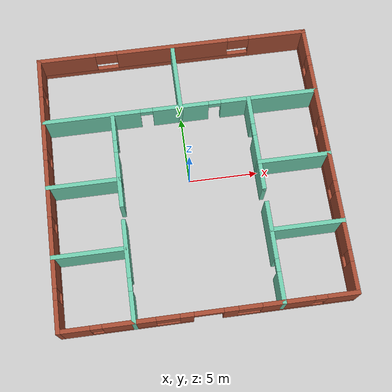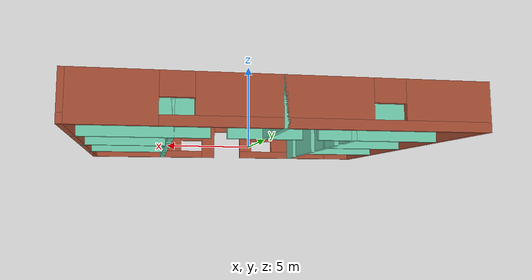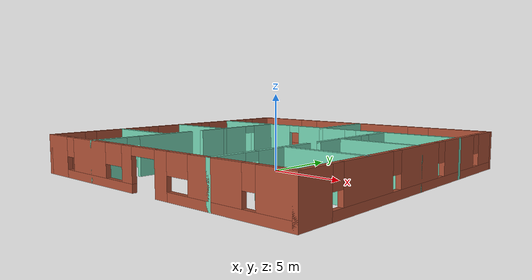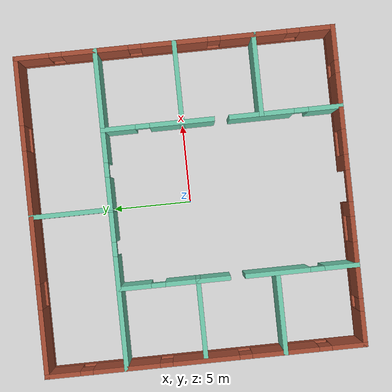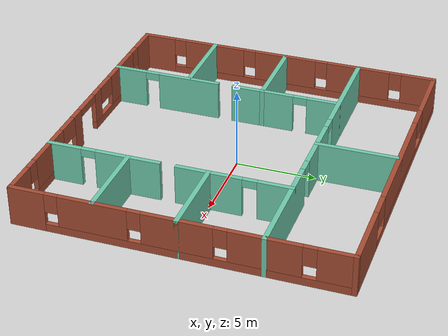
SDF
<?xml version='1.0'?>
<sdf version='1.6'>
  <model name='Building'>
    <pose frame=''>0 -0 0 0 -0 0</pose>
    <link name='Wall_0'>
      <pose frame=''>0 10 0 0 -0 3.14159</pose>
      <visual name='Wall_0_Visual_0'>
        <pose frame=''>-7.975 0 1.25 0 -0 0</pose>
        <geometry>
          <box>
            <size>4.35 0.3 2.5</size>
          </box>
        </geometry>
        <material>
          <script>
            <uri>file://media/materials/scripts/gazebo.material</uri>
            <name>Gazebo/Bricks</name>
          </script>
          <ambient>1 1 1 1</ambient>
        </material>
        <meta>
          <layer>0</layer>
        </meta>
      </visual>
      <collision name='Wall_0_Collision_0'>
        <geometry>
          <box>
            <size>4.35 0.3 2.5</size>
          </box>
        </geometry>
        <pose frame=''>-7.975 0 1.25 0 -0 0</pose>
      </collision>
      <visual name='Wall_0_Visual_1'>
        <pose frame=''>2.175 0 0.25 0 -0 0</pose>
        <geometry>
          <box>
            <size>15.95 0.3 0.5</size>
          </box>
        </geometry>
        <material>
          <script>
            <uri>file://media/materials/scripts/gazebo.material</uri>
            <name>Gazebo/Bricks</name>
          </script>
          <ambient>1 1 1 1</ambient>
        </material>
        <meta>
          <layer>0</layer>
        </meta>
      </visual>
      <collision name='Wall_0_Collision_1'>
        <geometry>
          <box>
            <size>15.95 0.3 0.5</size>
          </box>
        </geometry>
        <pose frame=''>2.175 0 0.25 0 -0 0</pose>
      </collision>
      <visual name='Wall_0_Visual_2'>
        <pose frame=''>0 0 1.5 0 -0 0</pose>
        <geometry>
          <box>
            <size>8.4 0.3 2</size>
          </box>
        </geometry>
        <material>
          <script>
            <uri>file://media/materials/scripts/gazebo.material</uri>
            <name>Gazebo/Bricks</name>
          </script>
          <ambient>1 1 1 1</ambient>
        </material>
        <meta>
          <layer>0</layer>
        </meta>
      </visual>
      <collision name='Wall_0_Collision_2'>
        <geometry>
          <box>
            <size>8.4 0.3 2</size>
          </box>
        </geometry>
        <pose frame=''>0 0 1.5 0 -0 0</pose>
      </collision>
      <visual name='Wall_0_Visual_3'>
        <pose frame=''>7.975 0 1.5 0 -0 0</pose>
        <geometry>
          <box>
            <size>4.35 0.3 2</size>
          </box>
        </geometry>
        <material>
          <script>
            <uri>file://media/materials/scripts/gazebo.material</uri>
            <name>Gazebo/Bricks</name>
          </script>
          <ambient>1 1 1 1</ambient>
        </material>
        <meta>
          <layer>0</layer>
        </meta>
      </visual>
      <collision name='Wall_0_Collision_3'>
        <geometry>
          <box>
            <size>4.35 0.3 2</size>
          </box>
        </geometry>
        <pose frame=''>7.975 0 1.5 0 -0 0</pose>
      </collision>
      <visual name='Wall_0_Visual_4'>
        <pose frame=''>-5 0 1.9 0 -0 0</pose>
        <geometry>
          <box>
            <size>1.6 0.3 1.2</size>
          </box>
        </geometry>
        <material>
          <script>
            <uri>file://media/materials/scripts/gazebo.material</uri>
            <name>Gazebo/Bricks</name>
          </script>
          <ambient>1 1 1 1</ambient>
        </material>
        <meta>
          <layer>0</layer>
        </meta>
      </visual>
      <collision name='Wall_0_Collision_4'>
        <geometry>
          <box>
            <size>1.6 0.3 1.2</size>
          </box>
        </geometry>
        <pose frame=''>-5 0 1.9 0 -0 0</pose>
      </collision>
      <visual name='Wall_0_Visual_5'>
        <pose frame=''>5 0 1.9 0 -0 0</pose>
        <geometry>
          <box>
            <size>1.6 0.3 1.2</size>
          </box>
        </geometry>
        <material>
          <script>
            <uri>file://media/materials/scripts/gazebo.material</uri>
            <name>Gazebo/Bricks</name>
          </script>
          <ambient>1 1 1 1</ambient>
        </material>
        <meta>
          <layer>0</layer>
        </meta>
      </visual>
      <collision name='Wall_0_Collision_5'>
        <geometry>
          <box>
            <size>1.6 0.3 1.2</size>
          </box>
        </geometry>
        <pose frame=''>5 0 1.9 0 -0 0</pose>
      </collision>
    </link>
    <link name='Wall_12'>
      <pose frame=''>-5 -2.5 0 0 -0 1.5708</pose>
      <visual name='Wall_12_Visual_0'>
        <pose frame=''>-6.55 0 1.25 0 -0 0</pose>
        <geometry>
          <box>
            <size>2.2 0.3 2.5</size>
          </box>
        </geometry>
        <material>
          <script>
            <uri>file://media/materials/scripts/gazebo.material</uri>
            <name>Gazebo/Grey</name>
          </script>
          <ambient>0.435294 0.796078 0.67451 1</ambient>
        </material>
        <meta>
          <layer>0</layer>
        </meta>
      </visual>
      <collision name='Wall_12_Collision_0'>
        <geometry>
          <box>
            <size>2.2 0.3 2.5</size>
          </box>
        </geometry>
        <pose frame=''>-6.55 0 1.25 0 -0 0</pose>
      </collision>
      <visual name='Wall_12_Visual_1'>
        <pose frame=''>-2.5 0 1.25 0 -0 0</pose>
        <geometry>
          <box>
            <size>4.1 0.3 2.5</size>
          </box>
        </geometry>
        <material>
          <script>
            <uri>file://media/materials/scripts/gazebo.material</uri>
            <name>Gazebo/Grey</name>
          </script>
          <ambient>0.435294 0.796078 0.67451 1</ambient>
        </material>
        <meta>
          <layer>0</layer>
        </meta>
      </visual>
      <collision name='Wall_12_Collision_1'>
        <geometry>
          <box>
            <size>4.1 0.3 2.5</size>
          </box>
        </geometry>
        <pose frame=''>-2.5 0 1.25 0 -0 0</pose>
      </collision>
      <visual name='Wall_12_Visual_2'>
        <pose frame=''>2.5 0 1.25 0 -0 0</pose>
        <geometry>
          <box>
            <size>4.1 0.3 2.5</size>
          </box>
        </geometry>
        <material>
          <script>
            <uri>file://media/materials/scripts/gazebo.material</uri>
            <name>Gazebo/Grey</name>
          </script>
          <ambient>0.435294 0.796078 0.67451 1</ambient>
        </material>
        <meta>
          <layer>0</layer>
        </meta>
      </visual>
      <collision name='Wall_12_Collision_2'>
        <geometry>
          <box>
            <size>4.1 0.3 2.5</size>
          </box>
        </geometry>
        <pose frame=''>2.5 0 1.25 0 -0 0</pose>
      </collision>
      <visual name='Wall_12_Visual_3'>
        <pose frame=''>6.55 0 1.25 0 -0 0</pose>
        <geometry>
          <box>
            <size>2.2 0.3 2.5</size>
          </box>
        </geometry>
        <material>
          <script>
            <uri>file://media/materials/scripts/gazebo.material</uri>
            <name>Gazebo/Grey</name>
          </script>
          <ambient>0.435294 0.796078 0.67451 1</ambient>
        </material>
        <meta>
          <layer>0</layer>
        </meta>
      </visual>
      <collision name='Wall_12_Collision_3'>
        <geometry>
          <box>
            <size>2.2 0.3 2.5</size>
          </box>
        </geometry>
        <pose frame=''>6.55 0 1.25 0 -0 0</pose>
      </collision>
      <visual name='Wall_12_Visual_4'>
        <pose frame=''>-5 0 2.25 0 -0 0</pose>
        <geometry>
          <box>
            <size>0.9 0.3 0.5</size>
          </box>
        </geometry>
        <material>
          <script>
            <uri>file://media/materials/scripts/gazebo.material</uri>
            <name>Gazebo/Grey</name>
          </script>
          <ambient>0.435294 0.796078 0.67451 1</ambient>
        </material>
        <meta>
          <layer>0</layer>
        </meta>
      </visual>
      <collision name='Wall_12_Collision_4'>
        <geometry>
          <box>
            <size>0.9 0.3 0.5</size>
          </box>
        </geometry>
        <pose frame=''>-5 0 2.25 0 -0 0</pose>
      </collision>
      <visual name='Wall_12_Visual_5'>
        <pose frame=''>-0.45 0 2.25 0 -0 0</pose>
        <geometry>
          <box>
            <size>0 0.3 0.5</size>
          </box>
        </geometry>
        <material>
          <script>
            <uri>file://media/materials/scripts/gazebo.material</uri>
            <name>Gazebo/Grey</name>
          </script>
          <ambient>0.435294 0.796078 0.67451 1</ambient>
        </material>
        <meta>
          <layer>0</layer>
        </meta>
      </visual>
      <collision name='Wall_12_Collision_5'>
        <geometry>
          <box>
            <size>0 0.3 0.5</size>
          </box>
        </geometry>
        <pose frame=''>-0.45 0 2.25 0 -0 0</pose>
      </collision>
      <visual name='Wall_12_Visual_6'>
        <pose frame=''>5 0 2.25 0 -0 0</pose>
        <geometry>
          <box>
            <size>0.9 0.3 0.5</size>
          </box>
        </geometry>
        <material>
          <script>
            <uri>file://media/materials/scripts/gazebo.material</uri>
            <name>Gazebo/Grey</name>
          </script>
          <ambient>0.435294 0.796078 0.67451 1</ambient>
        </material>
        <meta>
          <layer>0</layer>
        </meta>
      </visual>
      <collision name='Wall_12_Collision_6'>
        <geometry>
          <box>
            <size>0.9 0.3 0.5</size>
          </box>
        </geometry>
        <pose frame=''>5 0 2.25 0 -0 0</pose>
      </collision>
    </link>
    <link name='Wall_14'>
      <pose frame=''>5 -2.5 0 0 0 -1.5708</pose>
      <visual name='Wall_14_Visual_0'>
        <pose frame=''>-6.55 0 1.25 0 -0 0</pose>
        <geometry>
          <box>
            <size>2.2 0.3 2.5</size>
          </box>
        </geometry>
        <material>
          <script>
            <uri>file://media/materials/scripts/gazebo.material</uri>
            <name>Gazebo/Grey</name>
          </script>
          <ambient>0.435294 0.796078 0.67451 1</ambient>
        </material>
        <meta>
          <layer>0</layer>
        </meta>
      </visual>
      <collision name='Wall_14_Collision_0'>
        <geometry>
          <box>
            <size>2.2 0.3 2.5</size>
          </box>
        </geometry>
        <pose frame=''>-6.55 0 1.25 0 -0 0</pose>
      </collision>
      <visual name='Wall_14_Visual_1'>
        <pose frame=''>-2.5 0 1.25 0 -0 0</pose>
        <geometry>
          <box>
            <size>4.1 0.3 2.5</size>
          </box>
        </geometry>
        <material>
          <script>
            <uri>file://media/materials/scripts/gazebo.material</uri>
            <name>Gazebo/Grey</name>
          </script>
          <ambient>0.435294 0.796078 0.67451 1</ambient>
        </material>
        <meta>
          <layer>0</layer>
        </meta>
      </visual>
      <collision name='Wall_14_Collision_1'>
        <geometry>
          <box>
            <size>4.1 0.3 2.5</size>
          </box>
        </geometry>
        <pose frame=''>-2.5 0 1.25 0 -0 0</pose>
      </collision>
      <visual name='Wall_14_Visual_2'>
        <pose frame=''>2.5 0 1.25 0 -0 0</pose>
        <geometry>
          <box>
            <size>4.1 0.3 2.5</size>
          </box>
        </geometry>
        <material>
          <script>
            <uri>file://media/materials/scripts/gazebo.material</uri>
            <name>Gazebo/Grey</name>
          </script>
          <ambient>0.435294 0.796078 0.67451 1</ambient>
        </material>
        <meta>
          <layer>0</layer>
        </meta>
      </visual>
      <collision name='Wall_14_Collision_2'>
        <geometry>
          <box>
            <size>4.1 0.3 2.5</size>
          </box>
        </geometry>
        <pose frame=''>2.5 0 1.25 0 -0 0</pose>
      </collision>
      <visual name='Wall_14_Visual_3'>
        <pose frame=''>6.55 0 1.25 0 -0 0</pose>
        <geometry>
          <box>
            <size>2.2 0.3 2.5</size>
          </box>
        </geometry>
        <material>
          <script>
            <uri>file://media/materials/scripts/gazebo.material</uri>
            <name>Gazebo/Grey</name>
          </script>
          <ambient>0.435294 0.796078 0.67451 1</ambient>
        </material>
        <meta>
          <layer>0</layer>
        </meta>
      </visual>
      <collision name='Wall_14_Collision_3'>
        <geometry>
          <box>
            <size>2.2 0.3 2.5</size>
          </box>
        </geometry>
        <pose frame=''>6.55 0 1.25 0 -0 0</pose>
      </collision>
      <visual name='Wall_14_Visual_4'>
        <pose frame=''>-5 0 2.25 0 -0 0</pose>
        <geometry>
          <box>
            <size>0.9 0.3 0.5</size>
          </box>
        </geometry>
        <material>
          <script>
            <uri>file://media/materials/scripts/gazebo.material</uri>
            <name>Gazebo/Grey</name>
          </script>
          <ambient>0.435294 0.796078 0.67451 1</ambient>
        </material>
        <meta>
          <layer>0</layer>
        </meta>
      </visual>
      <collision name='Wall_14_Collision_4'>
        <geometry>
          <box>
            <size>0.9 0.3 0.5</size>
          </box>
        </geometry>
        <pose frame=''>-5 0 2.25 0 -0 0</pose>
      </collision>
      <visual name='Wall_14_Visual_5'>
        <pose frame=''>-0.45 0 2.25 0 -0 0</pose>
        <geometry>
          <box>
            <size>0 0.3 0.5</size>
          </box>
        </geometry>
        <material>
          <script>
            <uri>file://media/materials/scripts/gazebo.material</uri>
            <name>Gazebo/Grey</name>
          </script>
          <ambient>0.435294 0.796078 0.67451 1</ambient>
        </material>
        <meta>
          <layer>0</layer>
        </meta>
      </visual>
      <collision name='Wall_14_Collision_5'>
        <geometry>
          <box>
            <size>0 0.3 0.5</size>
          </box>
        </geometry>
        <pose frame=''>-0.45 0 2.25 0 -0 0</pose>
      </collision>
      <visual name='Wall_14_Visual_6'>
        <pose frame=''>5 0 2.25 0 -0 0</pose>
        <geometry>
          <box>
            <size>0.9 0.3 0.5</size>
          </box>
        </geometry>
        <material>
          <script>
            <uri>file://media/materials/scripts/gazebo.material</uri>
            <name>Gazebo/Grey</name>
          </script>
          <ambient>0.435294 0.796078 0.67451 1</ambient>
        </material>
        <meta>
          <layer>0</layer>
        </meta>
      </visual>
      <collision name='Wall_14_Collision_6'>
        <geometry>
          <box>
            <size>0.9 0.3 0.5</size>
          </box>
        </geometry>
        <pose frame=''>5 0 2.25 0 -0 0</pose>
      </collision>
    </link>
    <link name='Wall_16'>
      <collision name='Wall_16_Collision'>
        <geometry>
          <box>
            <size>5.3 0.3 2.5</size>
          </box>
        </geometry>
        <pose frame=''>0 0 1.25 0 -0 0</pose>
      </collision>
      <visual name='Wall_16_Visual'>
        <pose frame=''>0 0 1.25 0 -0 0</pose>
        <geometry>
          <box>
            <size>5.3 0.3 2.5</size>
          </box>
        </geometry>
        <material>
          <script>
            <uri>file://media/materials/scripts/gazebo.material</uri>
            <name>Gazebo/Grey</name>
          </script>
          <ambient>0.435294 0.796078 0.67451 1</ambient>
        </material>
        <meta>
          <layer>0</layer>
        </meta>
      </visual>
      <pose frame=''>0 7.5 0 0 -0 1.5708</pose>
    </link>
    <link name='Wall_19'>
      <collision name='Wall_19_Collision'>
        <geometry>
          <box>
            <size>5.3 0.3 2.5</size>
          </box>
        </geometry>
        <pose frame=''>0 0 1.25 0 -0 0</pose>
      </collision>
      <visual name='Wall_19_Visual'>
        <pose frame=''>0 0 1.25 0 -0 0</pose>
        <geometry>
          <box>
            <size>5.3 0.3 2.5</size>
          </box>
        </geometry>
        <material>
          <script>
            <uri>file://media/materials/scripts/gazebo.material</uri>
            <name>Gazebo/Grey</name>
          </script>
          <ambient>0.435294 0.796078 0.67451 1</ambient>
        </material>
        <meta>
          <layer>0</layer>
        </meta>
      </visual>
      <pose frame=''>-7.5 -5 0 0 -0 0</pose>
    </link>
    <link name='Wall_2'>
      <pose frame=''>0 -10 0 0 -0 0</pose>
      <visual name='Wall_2_Visual_0'>
        <pose frame=''>-9.025 0 1.25 0 -0 0</pose>
        <geometry>
          <box>
            <size>2.25 0.3 2.5</size>
          </box>
        </geometry>
        <material>
          <script>
            <uri>file://media/materials/scripts/gazebo.material</uri>
            <name>Gazebo/Bricks</name>
          </script>
          <ambient>1 1 1 1</ambient>
        </material>
        <meta>
          <layer>0</layer>
        </meta>
      </visual>
      <collision name='Wall_2_Collision_0'>
        <geometry>
          <box>
            <size>2.25 0.3 2.5</size>
          </box>
        </geometry>
        <pose frame=''>-9.025 0 1.25 0 -0 0</pose>
      </collision>
      <visual name='Wall_2_Visual_1'>
        <pose frame=''>1.46321 0 1.25 0 -0 0</pose>
        <geometry>
          <box>
            <size>0.973589 0.3 2.5</size>
          </box>
        </geometry>
        <material>
          <script>
            <uri>file://media/materials/scripts/gazebo.material</uri>
            <name>Gazebo/Bricks</name>
          </script>
          <ambient>1 1 1 1</ambient>
        </material>
        <meta>
          <layer>0</layer>
        </meta>
      </visual>
      <collision name='Wall_2_Collision_1'>
        <geometry>
          <box>
            <size>0.973589 0.3 2.5</size>
          </box>
        </geometry>
        <pose frame=''>1.46321 0 1.25 0 -0 0</pose>
      </collision>
      <visual name='Wall_2_Visual_2'>
        <pose frame=''>-4.4618 0 0.25 0 -0 0</pose>
        <geometry>
          <box>
            <size>6.87641 0.3 0.5</size>
          </box>
        </geometry>
        <material>
          <script>
            <uri>file://media/materials/scripts/gazebo.material</uri>
            <name>Gazebo/Bricks</name>
          </script>
          <ambient>1 1 1 1</ambient>
        </material>
        <meta>
          <layer>0</layer>
        </meta>
      </visual>
      <collision name='Wall_2_Collision_2'>
        <geometry>
          <box>
            <size>6.87641 0.3 0.5</size>
          </box>
        </geometry>
        <pose frame=''>-4.4618 0 0.25 0 -0 0</pose>
      </collision>
      <visual name='Wall_2_Visual_3'>
        <pose frame=''>6.05 0 0.25 0 -0 0</pose>
        <geometry>
          <box>
            <size>8.2 0.3 0.5</size>
          </box>
        </geometry>
        <material>
          <script>
            <uri>file://media/materials/scripts/gazebo.material</uri>
            <name>Gazebo/Bricks</name>
          </script>
          <ambient>1 1 1 1</ambient>
        </material>
        <meta>
          <layer>0</layer>
        </meta>
      </visual>
      <collision name='Wall_2_Collision_3'>
        <geometry>
          <box>
            <size>8.2 0.3 0.5</size>
          </box>
        </geometry>
        <pose frame=''>6.05 0 0.25 0 -0 0</pose>
      </collision>
      <visual name='Wall_2_Visual_4'>
        <pose frame=''>-5.325 0 1.5 0 -0 0</pose>
        <geometry>
          <box>
            <size>3.55 0.3 2</size>
          </box>
        </geometry>
        <material>
          <script>
            <uri>file://media/materials/scripts/gazebo.material</uri>
            <name>Gazebo/Bricks</name>
          </script>
          <ambient>1 1 1 1</ambient>
        </material>
        <meta>
          <layer>0</layer>
        </meta>
      </visual>
      <collision name='Wall_2_Collision_4'>
        <geometry>
          <box>
            <size>3.55 0.3 2</size>
          </box>
        </geometry>
        <pose frame=''>-5.325 0 1.5 0 -0 0</pose>
      </collision>
      <visual name='Wall_2_Visual_5'>
        <pose frame=''>-1.4868 0 1.5 0 -0 0</pose>
        <geometry>
          <box>
            <size>0.926411 0.3 2</size>
          </box>
        </geometry>
        <material>
          <script>
            <uri>file://media/materials/scripts/gazebo.material</uri>
            <name>Gazebo/Bricks</name>
          </script>
          <ambient>1 1 1 1</ambient>
        </material>
        <meta>
          <layer>0</layer>
        </meta>
      </visual>
      <collision name='Wall_2_Collision_5'>
        <geometry>
          <box>
            <size>0.926411 0.3 2</size>
          </box>
        </geometry>
        <pose frame=''>-1.4868 0 1.5 0 -0 0</pose>
      </collision>
      <visual name='Wall_2_Visual_6'>
        <pose frame=''>-1.4868 0 1.5 0 -0 0</pose>
        <geometry>
          <box>
            <size>0.926411 0.3 2</size>
          </box>
        </geometry>
        <material>
          <script>
            <uri>file://media/materials/scripts/gazebo.material</uri>
            <name>Gazebo/Bricks</name>
          </script>
          <ambient>1 1 1 1</ambient>
        </material>
        <meta>
          <layer>0</layer>
        </meta>
      </visual>
      <collision name='Wall_2_Collision_6'>
        <geometry>
          <box>
            <size>0.926411 0.3 2</size>
          </box>
        </geometry>
        <pose frame=''>-1.4868 0 1.5 0 -0 0</pose>
      </collision>
      <visual name='Wall_2_Visual_7'>
        <pose frame=''>5.325 0 1.5 0 -0 0</pose>
        <geometry>
          <box>
            <size>3.55 0.3 2</size>
          </box>
        </geometry>
        <material>
          <script>
            <uri>file://media/materials/scripts/gazebo.material</uri>
            <name>Gazebo/Bricks</name>
          </script>
          <ambient>1 1 1 1</ambient>
        </material>
        <meta>
          <layer>0</layer>
        </meta>
      </visual>
      <collision name='Wall_2_Collision_7'>
        <geometry>
          <box>
            <size>3.55 0.3 2</size>
          </box>
        </geometry>
        <pose frame=''>5.325 0 1.5 0 -0 0</pose>
      </collision>
      <visual name='Wall_2_Visual_8'>
        <pose frame=''>9.025 0 1.5 0 -0 0</pose>
        <geometry>
          <box>
            <size>2.25 0.3 2</size>
          </box>
        </geometry>
        <material>
          <script>
            <uri>file://media/materials/scripts/gazebo.material</uri>
            <name>Gazebo/Bricks</name>
          </script>
          <ambient>1 1 1 1</ambient>
        </material>
        <meta>
          <layer>0</layer>
        </meta>
      </visual>
      <collision name='Wall_2_Collision_8'>
        <geometry>
          <box>
            <size>2.25 0.3 2</size>
          </box>
        </geometry>
        <pose frame=''>9.025 0 1.5 0 -0 0</pose>
      </collision>
      <visual name='Wall_2_Visual_9'>
        <pose frame=''>-7.5 0 1.9 0 -0 0</pose>
        <geometry>
          <box>
            <size>0.8 0.3 1.2</size>
          </box>
        </geometry>
        <material>
          <script>
            <uri>file://media/materials/scripts/gazebo.material</uri>
            <name>Gazebo/Bricks</name>
          </script>
          <ambient>1 1 1 1</ambient>
        </material>
        <meta>
          <layer>0</layer>
        </meta>
      </visual>
      <collision name='Wall_2_Collision_9'>
        <geometry>
          <box>
            <size>0.8 0.3 1.2</size>
          </box>
        </geometry>
        <pose frame=''>-7.5 0 1.9 0 -0 0</pose>
      </collision>
      <visual name='Wall_2_Visual_10'>
        <pose frame=''>2.75 0 1.9 0 -0 0</pose>
        <geometry>
          <box>
            <size>1.6 0.3 1.2</size>
          </box>
        </geometry>
        <material>
          <script>
            <uri>file://media/materials/scripts/gazebo.material</uri>
            <name>Gazebo/Bricks</name>
          </script>
          <ambient>1 1 1 1</ambient>
        </material>
        <meta>
          <layer>0</layer>
        </meta>
      </visual>
      <collision name='Wall_2_Collision_10'>
        <geometry>
          <box>
            <size>1.6 0.3 1.2</size>
          </box>
        </geometry>
        <pose frame=''>2.75 0 1.9 0 -0 0</pose>
      </collision>
      <visual name='Wall_2_Visual_11'>
        <pose frame=''>-2.75 0 1.9 0 -0 0</pose>
        <geometry>
          <box>
            <size>1.6 0.3 1.2</size>
          </box>
        </geometry>
        <material>
          <script>
            <uri>file://media/materials/scripts/gazebo.material</uri>
            <name>Gazebo/Bricks</name>
          </script>
          <ambient>1 1 1 1</ambient>
        </material>
        <meta>
          <layer>0</layer>
        </meta>
      </visual>
      <collision name='Wall_2_Collision_11'>
        <geometry>
          <box>
            <size>1.6 0.3 1.2</size>
          </box>
        </geometry>
        <pose frame=''>-2.75 0 1.9 0 -0 0</pose>
      </collision>
      <visual name='Wall_2_Visual_12'>
        <pose frame=''>7.5 0 1.9 0 -0 0</pose>
        <geometry>
          <box>
            <size>0.8 0.3 1.2</size>
          </box>
        </geometry>
        <material>
          <script>
            <uri>file://media/materials/scripts/gazebo.material</uri>
            <name>Gazebo/Bricks</name>
          </script>
          <ambient>1 1 1 1</ambient>
        </material>
        <meta>
          <layer>0</layer>
        </meta>
      </visual>
      <collision name='Wall_2_Collision_12'>
        <geometry>
          <box>
            <size>0.8 0.3 1.2</size>
          </box>
        </geometry>
        <pose frame=''>7.5 0 1.9 0 -0 0</pose>
      </collision>
      <visual name='Wall_2_Visual_13'>
        <pose frame=''>-0.023589 0 2.25 0 -0 0</pose>
        <geometry>
          <box>
            <size>2 0.3 0.5</size>
          </box>
        </geometry>
        <material>
          <script>
            <uri>file://media/materials/scripts/gazebo.material</uri>
            <name>Gazebo/Bricks</name>
          </script>
          <ambient>1 1 1 1</ambient>
        </material>
        <meta>
          <layer>0</layer>
        </meta>
      </visual>
      <collision name='Wall_2_Collision_13'>
        <geometry>
          <box>
            <size>2 0.3 0.5</size>
          </box>
        </geometry>
        <pose frame=''>-0.023589 0 2.25 0 -0 0</pose>
      </collision>
      <visual name='Wall_2_Visual_14'>
        <pose frame=''>-0.023589 0 2.25 0 -0 0</pose>
        <geometry>
          <box>
            <size>2 0.3 0.5</size>
          </box>
        </geometry>
        <material>
          <script>
            <uri>file://media/materials/scripts/gazebo.material</uri>
            <name>Gazebo/Bricks</name>
          </script>
          <ambient>1 1 1 1</ambient>
        </material>
        <meta>
          <layer>0</layer>
        </meta>
      </visual>
      <collision name='Wall_2_Collision_14'>
        <geometry>
          <box>
            <size>2 0.3 0.5</size>
          </box>
        </geometry>
        <pose frame=''>-0.023589 0 2.25 0 -0 0</pose>
      </collision>
    </link>
    <link name='Wall_21'>
      <collision name='Wall_21_Collision'>
        <geometry>
          <box>
            <size>5.3 0.3 2.5</size>
          </box>
        </geometry>
        <pose frame=''>0 0 1.25 0 -0 0</pose>
      </collision>
      <visual name='Wall_21_Visual'>
        <pose frame=''>0 0 1.25 0 -0 0</pose>
        <geometry>
          <box>
            <size>5.3 0.3 2.5</size>
          </box>
        </geometry>
        <material>
          <script>
            <uri>file://media/materials/scripts/gazebo.material</uri>
            <name>Gazebo/Grey</name>
          </script>
          <ambient>0.435294 0.796078 0.67451 1</ambient>
        </material>
        <meta>
          <layer>0</layer>
        </meta>
      </visual>
      <pose frame=''>7.5 -5 0 0 -0 0</pose>
    </link>
    <link name='Wall_22'>
      <collision name='Wall_22_Collision'>
        <geometry>
          <box>
            <size>0.268816 0.15 2.5</size>
          </box>
        </geometry>
        <pose frame=''>0 0 1.25 0 -0 0</pose>
      </collision>
      <visual name='Wall_22_Visual'>
        <pose frame=''>0 0 1.25 0 -0 0</pose>
        <geometry>
          <box>
            <size>0.268816 0.15 2.5</size>
          </box>
        </geometry>
        <material>
          <script>
            <uri>file://media/materials/scripts/gazebo.material</uri>
            <name>Gazebo/Grey</name>
          </script>
          <ambient>1 1 1 1</ambient>
        </material>
        <meta>
          <layer>0</layer>
        </meta>
      </visual>
      <pose frame=''>9.95756 -4.95843 0 0 -0 2.36663</pose>
    </link>
    <link name='Wall_23'>
      <collision name='Wall_23_Collision'>
        <geometry>
          <box>
            <size>0.268816 0.15 2.5</size>
          </box>
        </geometry>
        <pose frame=''>0 0 1.25 0 -0 0</pose>
      </collision>
      <visual name='Wall_23_Visual'>
        <pose frame=''>0 0 1.25 0 -0 0</pose>
        <geometry>
          <box>
            <size>0.268816 0.15 2.5</size>
          </box>
        </geometry>
        <material>
          <script>
            <uri>file://media/materials/scripts/gazebo.material</uri>
            <name>Gazebo/Grey</name>
          </script>
          <ambient>1 1 1 1</ambient>
        </material>
        <meta>
          <layer>0</layer>
        </meta>
      </visual>
      <pose frame=''>9.95756 -4.95843 0 0 0 -0.77496</pose>
    </link>
    <link name='Wall_25'>
      <collision name='Wall_25_Collision'>
        <geometry>
          <box>
            <size>5.3 0.3 2.5</size>
          </box>
        </geometry>
        <pose frame=''>0 0 1.25 0 -0 0</pose>
      </collision>
      <visual name='Wall_25_Visual'>
        <pose frame=''>0 0 1.25 0 -0 0</pose>
        <geometry>
          <box>
            <size>5.3 0.3 2.5</size>
          </box>
        </geometry>
        <material>
          <script>
            <uri>file://media/materials/scripts/gazebo.material</uri>
            <name>Gazebo/Grey</name>
          </script>
          <ambient>0.435294 0.796078 0.67451 1</ambient>
        </material>
        <meta>
          <layer>0</layer>
        </meta>
      </visual>
      <pose frame=''>-7.5 0 0 0 -0 0</pose>
    </link>
    <link name='Wall_27'>
      <collision name='Wall_27_Collision'>
        <geometry>
          <box>
            <size>5.3 0.3 2.5</size>
          </box>
        </geometry>
        <pose frame=''>0 0 1.25 0 -0 0</pose>
      </collision>
      <visual name='Wall_27_Visual'>
        <pose frame=''>0 0 1.25 0 -0 0</pose>
        <geometry>
          <box>
            <size>5.3 0.3 2.5</size>
          </box>
        </geometry>
        <material>
          <script>
            <uri>file://media/materials/scripts/gazebo.material</uri>
            <name>Gazebo/Grey</name>
          </script>
          <ambient>0.435294 0.796078 0.67451 1</ambient>
        </material>
        <meta>
          <layer>0</layer>
        </meta>
      </visual>
      <pose frame=''>7.5 0 0 0 -0 0</pose>
    </link>
    <link name='Wall_5'>
      <pose frame=''>-10 0 0 0 -0 1.5708</pose>
      <visual name='Wall_5_Visual_0'>
        <pose frame=''>-9.025 0 1.25 0 -0 0</pose>
        <geometry>
          <box>
            <size>2.25 0.3 2.5</size>
          </box>
        </geometry>
        <material>
          <script>
            <uri>file://media/materials/scripts/gazebo.material</uri>
            <name>Gazebo/Bricks</name>
          </script>
          <ambient>1 1 1 1</ambient>
        </material>
        <meta>
          <layer>0</layer>
        </meta>
      </visual>
      <collision name='Wall_5_Collision_0'>
        <geometry>
          <box>
            <size>2.25 0.3 2.5</size>
          </box>
        </geometry>
        <pose frame=''>-9.025 0 1.25 0 -0 0</pose>
      </collision>
      <visual name='Wall_5_Visual_1'>
        <pose frame=''>1.125 0 0.25 0 -0 0</pose>
        <geometry>
          <box>
            <size>18.05 0.3 0.5</size>
          </box>
        </geometry>
        <material>
          <script>
            <uri>file://media/materials/scripts/gazebo.material</uri>
            <name>Gazebo/Bricks</name>
          </script>
          <ambient>1 1 1 1</ambient>
        </material>
        <meta>
          <layer>0</layer>
        </meta>
      </visual>
      <collision name='Wall_5_Collision_1'>
        <geometry>
          <box>
            <size>18.05 0.3 0.5</size>
          </box>
        </geometry>
        <pose frame=''>1.125 0 0.25 0 -0 0</pose>
      </collision>
      <visual name='Wall_5_Visual_2'>
        <pose frame=''>-5 0 1.5 0 -0 0</pose>
        <geometry>
          <box>
            <size>4.2 0.3 2</size>
          </box>
        </geometry>
        <material>
          <script>
            <uri>file://media/materials/scripts/gazebo.material</uri>
            <name>Gazebo/Bricks</name>
          </script>
          <ambient>1 1 1 1</ambient>
        </material>
        <meta>
          <layer>0</layer>
        </meta>
      </visual>
      <collision name='Wall_5_Collision_2'>
        <geometry>
          <box>
            <size>4.2 0.3 2</size>
          </box>
        </geometry>
        <pose frame=''>-5 0 1.5 0 -0 0</pose>
      </collision>
      <visual name='Wall_5_Visual_3'>
        <pose frame=''>-0.002642 0 1.5 0 -0 0</pose>
        <geometry>
          <box>
            <size>4.19472 0.3 2</size>
          </box>
        </geometry>
        <material>
          <script>
            <uri>file://media/materials/scripts/gazebo.material</uri>
            <name>Gazebo/Bricks</name>
          </script>
          <ambient>1 1 1 1</ambient>
        </material>
        <meta>
          <layer>0</layer>
        </meta>
      </visual>
      <collision name='Wall_5_Collision_3'>
        <geometry>
          <box>
            <size>4.19472 0.3 2</size>
          </box>
        </geometry>
        <pose frame=''>-0.002642 0 1.5 0 -0 0</pose>
      </collision>
      <visual name='Wall_5_Visual_4'>
        <pose frame=''>4.99736 0 1.5 0 -0 0</pose>
        <geometry>
          <box>
            <size>4.20528 0.3 2</size>
          </box>
        </geometry>
        <material>
          <script>
            <uri>file://media/materials/scripts/gazebo.material</uri>
            <name>Gazebo/Bricks</name>
          </script>
          <ambient>1 1 1 1</ambient>
        </material>
        <meta>
          <layer>0</layer>
        </meta>
      </visual>
      <collision name='Wall_5_Collision_4'>
        <geometry>
          <box>
            <size>4.20528 0.3 2</size>
          </box>
        </geometry>
        <pose frame=''>4.99736 0 1.5 0 -0 0</pose>
      </collision>
      <visual name='Wall_5_Visual_5'>
        <pose frame=''>9.025 0 1.5 0 -0 0</pose>
        <geometry>
          <box>
            <size>2.25 0.3 2</size>
          </box>
        </geometry>
        <material>
          <script>
            <uri>file://media/materials/scripts/gazebo.material</uri>
            <name>Gazebo/Bricks</name>
          </script>
          <ambient>1 1 1 1</ambient>
        </material>
        <meta>
          <layer>0</layer>
        </meta>
      </visual>
      <collision name='Wall_5_Collision_5'>
        <geometry>
          <box>
            <size>2.25 0.3 2</size>
          </box>
        </geometry>
        <pose frame=''>9.025 0 1.5 0 -0 0</pose>
      </collision>
      <visual name='Wall_5_Visual_6'>
        <pose frame=''>-7.5 0 1.9 0 -0 0</pose>
        <geometry>
          <box>
            <size>0.8 0.3 1.2</size>
          </box>
        </geometry>
        <material>
          <script>
            <uri>file://media/materials/scripts/gazebo.material</uri>
            <name>Gazebo/Bricks</name>
          </script>
          <ambient>1 1 1 1</ambient>
        </material>
        <meta>
          <layer>0</layer>
        </meta>
      </visual>
      <collision name='Wall_5_Collision_6'>
        <geometry>
          <box>
            <size>0.8 0.3 1.2</size>
          </box>
        </geometry>
        <pose frame=''>-7.5 0 1.9 0 -0 0</pose>
      </collision>
      <visual name='Wall_5_Visual_7'>
        <pose frame=''>-2.5 0 1.9 0 -0 0</pose>
        <geometry>
          <box>
            <size>0.8 0.3 1.2</size>
          </box>
        </geometry>
        <material>
          <script>
            <uri>file://media/materials/scripts/gazebo.material</uri>
            <name>Gazebo/Bricks</name>
          </script>
          <ambient>1 1 1 1</ambient>
        </material>
        <meta>
          <layer>0</layer>
        </meta>
      </visual>
      <collision name='Wall_5_Collision_7'>
        <geometry>
          <box>
            <size>0.8 0.3 1.2</size>
          </box>
        </geometry>
        <pose frame=''>-2.5 0 1.9 0 -0 0</pose>
      </collision>
      <visual name='Wall_5_Visual_8'>
        <pose frame=''>2.49471 0 1.9 0 -0 0</pose>
        <geometry>
          <box>
            <size>0.8 0.3 1.2</size>
          </box>
        </geometry>
        <material>
          <script>
            <uri>file://media/materials/scripts/gazebo.material</uri>
            <name>Gazebo/Bricks</name>
          </script>
          <ambient>1 1 1 1</ambient>
        </material>
        <meta>
          <layer>0</layer>
        </meta>
      </visual>
      <collision name='Wall_5_Collision_8'>
        <geometry>
          <box>
            <size>0.8 0.3 1.2</size>
          </box>
        </geometry>
        <pose frame=''>2.49471 0 1.9 0 -0 0</pose>
      </collision>
      <visual name='Wall_5_Visual_9'>
        <pose frame=''>7.5 0 1.9 0 -0 0</pose>
        <geometry>
          <box>
            <size>0.8 0.3 1.2</size>
          </box>
        </geometry>
        <material>
          <script>
            <uri>file://media/materials/scripts/gazebo.material</uri>
            <name>Gazebo/Bricks</name>
          </script>
          <ambient>1 1 1 1</ambient>
        </material>
        <meta>
          <layer>0</layer>
        </meta>
      </visual>
      <collision name='Wall_5_Collision_9'>
        <geometry>
          <box>
            <size>0.8 0.3 1.2</size>
          </box>
        </geometry>
        <pose frame=''>7.5 0 1.9 0 -0 0</pose>
      </collision>
    </link>
    <link name='Wall_7'>
      <pose frame=''>10 0 0 0 -0 1.5708</pose>
      <visual name='Wall_7_Visual_0'>
        <pose frame=''>-9.025 0 1.25 0 -0 0</pose>
        <geometry>
          <box>
            <size>2.25 0.3 2.5</size>
          </box>
        </geometry>
        <material>
          <script>
            <uri>file://media/materials/scripts/gazebo.material</uri>
            <name>Gazebo/Bricks</name>
          </script>
          <ambient>1 1 1 1</ambient>
        </material>
        <meta>
          <layer>0</layer>
        </meta>
      </visual>
      <collision name='Wall_7_Collision_0'>
        <geometry>
          <box>
            <size>2.25 0.3 2.5</size>
          </box>
        </geometry>
        <pose frame=''>-9.025 0 1.25 0 -0 0</pose>
      </collision>
      <visual name='Wall_7_Visual_1'>
        <pose frame=''>1.125 0 0.25 0 -0 0</pose>
        <geometry>
          <box>
            <size>18.05 0.3 0.5</size>
          </box>
        </geometry>
        <material>
          <script>
            <uri>file://media/materials/scripts/gazebo.material</uri>
            <name>Gazebo/Bricks</name>
          </script>
          <ambient>1 1 1 1</ambient>
        </material>
        <meta>
          <layer>0</layer>
        </meta>
      </visual>
      <collision name='Wall_7_Collision_1'>
        <geometry>
          <box>
            <size>18.05 0.3 0.5</size>
          </box>
        </geometry>
        <pose frame=''>1.125 0 0.25 0 -0 0</pose>
      </collision>
      <visual name='Wall_7_Visual_2'>
        <pose frame=''>-5 0 1.5 0 -0 0</pose>
        <geometry>
          <box>
            <size>4.2 0.3 2</size>
          </box>
        </geometry>
        <material>
          <script>
            <uri>file://media/materials/scripts/gazebo.material</uri>
            <name>Gazebo/Bricks</name>
          </script>
          <ambient>1 1 1 1</ambient>
        </material>
        <meta>
          <layer>0</layer>
        </meta>
      </visual>
      <collision name='Wall_7_Collision_2'>
        <geometry>
          <box>
            <size>4.2 0.3 2</size>
          </box>
        </geometry>
        <pose frame=''>-5 0 1.5 0 -0 0</pose>
      </collision>
      <visual name='Wall_7_Visual_3'>
        <pose frame=''>0 0 1.5 0 -0 0</pose>
        <geometry>
          <box>
            <size>4.2 0.3 2</size>
          </box>
        </geometry>
        <material>
          <script>
            <uri>file://media/materials/scripts/gazebo.material</uri>
            <name>Gazebo/Bricks</name>
          </script>
          <ambient>1 1 1 1</ambient>
        </material>
        <meta>
          <layer>0</layer>
        </meta>
      </visual>
      <collision name='Wall_7_Collision_3'>
        <geometry>
          <box>
            <size>4.2 0.3 2</size>
          </box>
        </geometry>
        <pose frame=''>0 0 1.5 0 -0 0</pose>
      </collision>
      <visual name='Wall_7_Visual_4'>
        <pose frame=''>5 0 1.5 0 -0 0</pose>
        <geometry>
          <box>
            <size>4.2 0.3 2</size>
          </box>
        </geometry>
        <material>
          <script>
            <uri>file://media/materials/scripts/gazebo.material</uri>
            <name>Gazebo/Bricks</name>
          </script>
          <ambient>1 1 1 1</ambient>
        </material>
        <meta>
          <layer>0</layer>
        </meta>
      </visual>
      <collision name='Wall_7_Collision_4'>
        <geometry>
          <box>
            <size>4.2 0.3 2</size>
          </box>
        </geometry>
        <pose frame=''>5 0 1.5 0 -0 0</pose>
      </collision>
      <visual name='Wall_7_Visual_5'>
        <pose frame=''>9.025 0 1.5 0 -0 0</pose>
        <geometry>
          <box>
            <size>2.25 0.3 2</size>
          </box>
        </geometry>
        <material>
          <script>
            <uri>file://media/materials/scripts/gazebo.material</uri>
            <name>Gazebo/Bricks</name>
          </script>
          <ambient>1 1 1 1</ambient>
        </material>
        <meta>
          <layer>0</layer>
        </meta>
      </visual>
      <collision name='Wall_7_Collision_5'>
        <geometry>
          <box>
            <size>2.25 0.3 2</size>
          </box>
        </geometry>
        <pose frame=''>9.025 0 1.5 0 -0 0</pose>
      </collision>
      <visual name='Wall_7_Visual_6'>
        <pose frame=''>-7.5 0 1.9 0 -0 0</pose>
        <geometry>
          <box>
            <size>0.8 0.3 1.2</size>
          </box>
        </geometry>
        <material>
          <script>
            <uri>file://media/materials/scripts/gazebo.material</uri>
            <name>Gazebo/Bricks</name>
          </script>
          <ambient>1 1 1 1</ambient>
        </material>
        <meta>
          <layer>0</layer>
        </meta>
      </visual>
      <collision name='Wall_7_Collision_6'>
        <geometry>
          <box>
            <size>0.8 0.3 1.2</size>
          </box>
        </geometry>
        <pose frame=''>-7.5 0 1.9 0 -0 0</pose>
      </collision>
      <visual name='Wall_7_Visual_7'>
        <pose frame=''>-2.5 0 1.9 0 -0 0</pose>
        <geometry>
          <box>
            <size>0.8 0.3 1.2</size>
          </box>
        </geometry>
        <material>
          <script>
            <uri>file://media/materials/scripts/gazebo.material</uri>
            <name>Gazebo/Bricks</name>
          </script>
          <ambient>1 1 1 1</ambient>
        </material>
        <meta>
          <layer>0</layer>
        </meta>
      </visual>
      <collision name='Wall_7_Collision_7'>
        <geometry>
          <box>
            <size>0.8 0.3 1.2</size>
          </box>
        </geometry>
        <pose frame=''>-2.5 0 1.9 0 -0 0</pose>
      </collision>
      <visual name='Wall_7_Visual_8'>
        <pose frame=''>2.5 0 1.9 0 -0 0</pose>
        <geometry>
          <box>
            <size>0.8 0.3 1.2</size>
          </box>
        </geometry>
        <material>
          <script>
            <uri>file://media/materials/scripts/gazebo.material</uri>
            <name>Gazebo/Bricks</name>
          </script>
          <ambient>1 1 1 1</ambient>
        </material>
        <meta>
          <layer>0</layer>
        </meta>
      </visual>
      <collision name='Wall_7_Collision_8'>
        <geometry>
          <box>
            <size>0.8 0.3 1.2</size>
          </box>
        </geometry>
        <pose frame=''>2.5 0 1.9 0 -0 0</pose>
      </collision>
      <visual name='Wall_7_Visual_9'>
        <pose frame=''>7.5 0 1.9 0 -0 0</pose>
        <geometry>
          <box>
            <size>0.8 0.3 1.2</size>
          </box>
        </geometry>
        <material>
          <script>
            <uri>file://media/materials/scripts/gazebo.material</uri>
            <name>Gazebo/Bricks</name>
          </script>
          <ambient>1 1 1 1</ambient>
        </material>
        <meta>
          <layer>0</layer>
        </meta>
      </visual>
      <collision name='Wall_7_Collision_9'>
        <geometry>
          <box>
            <size>0.8 0.3 1.2</size>
          </box>
        </geometry>
        <pose frame=''>7.5 0 1.9 0 -0 0</pose>
      </collision>
    </link>
    <link name='Wall_9'>
      <pose frame=''>0 5 0 0 -0 0</pose>
      <visual name='Wall_9_Visual_0'>
        <pose frame=''>-6.55 0 1.25 0 -0 0</pose>
        <geometry>
          <box>
            <size>7.2 0.3 2.5</size>
          </box>
        </geometry>
        <material>
          <script>
            <uri>file://media/materials/scripts/gazebo.material</uri>
            <name>Gazebo/Grey</name>
          </script>
          <ambient>0.435294 0.796078 0.67451 1</ambient>
        </material>
        <meta>
          <layer>0</layer>
        </meta>
      </visual>
      <collision name='Wall_9_Collision_0'>
        <geometry>
          <box>
            <size>7.2 0.3 2.5</size>
          </box>
        </geometry>
        <pose frame=''>-6.55 0 1.25 0 -0 0</pose>
      </collision>
      <visual name='Wall_9_Visual_1'>
        <pose frame=''>0 0 1.25 0 -0 0</pose>
        <geometry>
          <box>
            <size>4.1 0.3 2.5</size>
          </box>
        </geometry>
        <material>
          <script>
            <uri>file://media/materials/scripts/gazebo.material</uri>
            <name>Gazebo/Grey</name>
          </script>
          <ambient>0.435294 0.796078 0.67451 1</ambient>
        </material>
        <meta>
          <layer>0</layer>
        </meta>
      </visual>
      <collision name='Wall_9_Collision_1'>
        <geometry>
          <box>
            <size>4.1 0.3 2.5</size>
          </box>
        </geometry>
        <pose frame=''>0 0 1.25 0 -0 0</pose>
      </collision>
      <visual name='Wall_9_Visual_2'>
        <pose frame=''>6.55 0 1.25 0 -0 0</pose>
        <geometry>
          <box>
            <size>7.2 0.3 2.5</size>
          </box>
        </geometry>
        <material>
          <script>
            <uri>file://media/materials/scripts/gazebo.material</uri>
            <name>Gazebo/Grey</name>
          </script>
          <ambient>0.435294 0.796078 0.67451 1</ambient>
        </material>
        <meta>
          <layer>0</layer>
        </meta>
      </visual>
      <collision name='Wall_9_Collision_2'>
        <geometry>
          <box>
            <size>7.2 0.3 2.5</size>
          </box>
        </geometry>
        <pose frame=''>6.55 0 1.25 0 -0 0</pose>
      </collision>
      <visual name='Wall_9_Visual_3'>
        <pose frame=''>-2.5 0 2.25 0 -0 0</pose>
        <geometry>
          <box>
            <size>0.9 0.3 0.5</size>
          </box>
        </geometry>
        <material>
          <script>
            <uri>file://media/materials/scripts/gazebo.material</uri>
            <name>Gazebo/Grey</name>
          </script>
          <ambient>0.435294 0.796078 0.67451 1</ambient>
        </material>
        <meta>
          <layer>0</layer>
        </meta>
      </visual>
      <collision name='Wall_9_Collision_3'>
        <geometry>
          <box>
            <size>0.9 0.3 0.5</size>
          </box>
        </geometry>
        <pose frame=''>-2.5 0 2.25 0 -0 0</pose>
      </collision>
      <visual name='Wall_9_Visual_4'>
        <pose frame=''>2.5 0 2.25 0 -0 0</pose>
        <geometry>
          <box>
            <size>0.9 0.3 0.5</size>
          </box>
        </geometry>
        <material>
          <script>
            <uri>file://media/materials/scripts/gazebo.material</uri>
            <name>Gazebo/Grey</name>
          </script>
          <ambient>0.435294 0.796078 0.67451 1</ambient>
        </material>
        <meta>
          <layer>0</layer>
        </meta>
      </visual>
      <collision name='Wall_9_Collision_4'>
        <geometry>
          <box>
            <size>0.9 0.3 0.5</size>
          </box>
        </geometry>
        <pose frame=''>2.5 0 2.25 0 -0 0</pose>
      </collision>
    </link>
    <static>1</static>
  </model>
</sdf>
